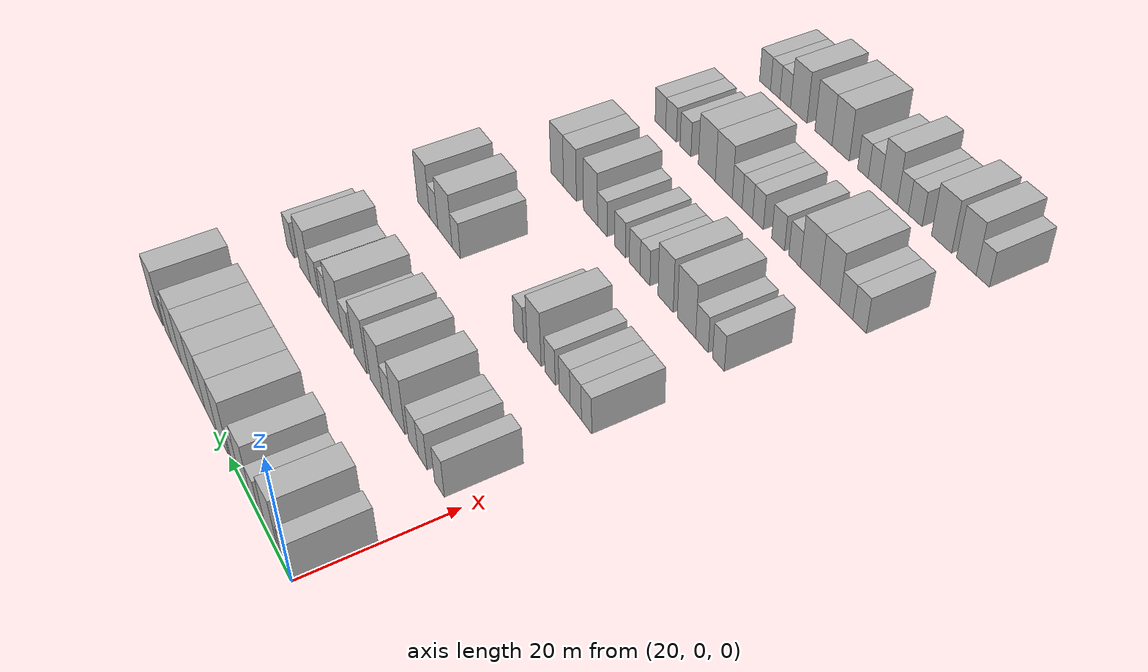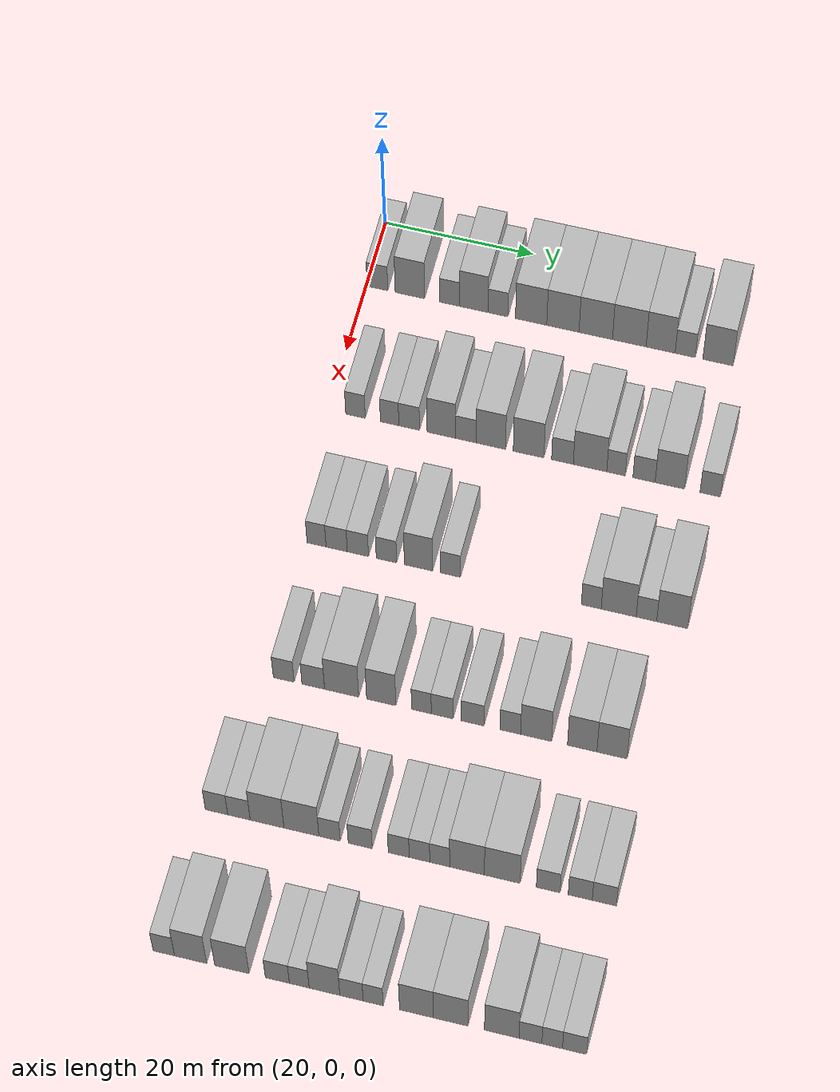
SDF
<sdf version="1.6">
 <world name="default">
  <model name="building_86">
   <static>1</static>
   <pose>25.0000 1.5672 0 0.000000 0.000000 0.000000</pose>
   <link name="link">
    <pose>0 0 3.00 0 0 0</pose>
    <collision name="collision"><geometry><box><size>10.0000 2.7812 6.0000</size></box></geometry></collision>
    <visual name="visual">
     <cast_shadows>0</cast_shadows>
     <geometry><box><size>10.0000 2.7812 6.0000</size></box></geometry>
     <material>
      <script>
       <uri>model://HANNAS_wall/materials/scripts</uri>
       <uri>model://HANNAS_wall/materials/textures</uri>
       <name>vrc/HANNAS_wall</name>
      </script>
     </material>
    </visual>
   </link>
  </model>
  <model name="building_87">
   <static>1</static>
   <pose>25.0000 5.9327 0 0.000000 0.000000 0.000000</pose>
   <link name="link">
    <pose>0 0 4.50 0 0 0</pose>
    <collision name="collision"><geometry><box><size>10.0000 3.9498 9.0000</size></box></geometry></collision>
    <visual name="visual">
     <cast_shadows>0</cast_shadows>
     <geometry><box><size>10.0000 3.9498 9.0000</size></box></geometry>
     <material>
      <script>
       <uri>model://HANNAS_wall/materials/scripts</uri>
       <uri>model://HANNAS_wall/materials/textures</uri>
       <name>vrc/HANNAS_wall</name>
      </script>
     </material>
    </visual>
   </link>
  </model>
  <model name="building_88">
   <static>1</static>
   <pose>25.0000 11.2726 0 0.000000 0.000000 0.000000</pose>
   <link name="link">
    <pose>0 0 3.00 0 0 0</pose>
    <collision name="collision"><geometry><box><size>10.0000 2.7298 6.0000</size></box></geometry></collision>
    <visual name="visual">
     <cast_shadows>0</cast_shadows>
     <geometry><box><size>10.0000 2.7298 6.0000</size></box></geometry>
     <material>
      <script>
       <uri>model://HANNAS_wall/materials/scripts</uri>
       <uri>model://HANNAS_wall/materials/textures</uri>
       <name>vrc/HANNAS_wall</name>
      </script>
     </material>
    </visual>
   </link>
  </model>
  <model name="building_89">
   <static>1</static>
   <pose>25.0000 14.5350 0 0.000000 0.000000 0.000000</pose>
   <link name="link">
    <pose>0 0 4.50 0 0 0</pose>
    <collision name="collision"><geometry><box><size>10.0000 3.7951 9.0000</size></box></geometry></collision>
    <visual name="visual">
     <cast_shadows>0</cast_shadows>
     <geometry><box><size>10.0000 3.7951 9.0000</size></box></geometry>
     <material>
      <script>
       <uri>model://HANNAS_wall/materials/scripts</uri>
       <uri>model://HANNAS_wall/materials/textures</uri>
       <name>vrc/HANNAS_wall</name>
      </script>
     </material>
    </visual>
   </link>
  </model>
  <model name="building_90">
   <static>1</static>
   <pose>25.0000 17.7570 0 0.000000 0.000000 0.000000</pose>
   <link name="link">
    <pose>0 0 3.00 0 0 0</pose>
    <collision name="collision"><geometry><box><size>10.0000 2.6489 6.0000</size></box></geometry></collision>
    <visual name="visual">
     <cast_shadows>0</cast_shadows>
     <geometry><box><size>10.0000 2.6489 6.0000</size></box></geometry>
     <material>
      <script>
       <uri>model://HANNAS_wall/materials/scripts</uri>
       <uri>model://HANNAS_wall/materials/textures</uri>
       <name>vrc/HANNAS_wall</name>
      </script>
     </material>
    </visual>
   </link>
  </model>
  <model name="building_91">
   <static>1</static>
   <pose>25.0000 22.1676 0 0.000000 0.000000 0.000000</pose>
   <link name="link">
    <pose>0 0 4.50 0 0 0</pose>
    <collision name="collision"><geometry><box><size>10.0000 4.1721 9.0000</size></box></geometry></collision>
    <visual name="visual">
     <cast_shadows>0</cast_shadows>
     <geometry><box><size>10.0000 4.1721 9.0000</size></box></geometry>
     <material>
      <script>
       <uri>model://HANNAS_wall/materials/scripts</uri>
       <uri>model://HANNAS_wall/materials/textures</uri>
       <name>vrc/HANNAS_wall</name>
      </script>
     </material>
    </visual>
   </link>
  </model>
  <model name="building_92">
   <static>1</static>
   <pose>25.0000 26.4035 0 0.000000 0.000000 0.000000</pose>
   <link name="link">
    <pose>0 0 4.50 0 0 0</pose>
    <collision name="collision"><geometry><box><size>10.0000 4.2997 9.0000</size></box></geometry></collision>
    <visual name="visual">
     <cast_shadows>0</cast_shadows>
     <geometry><box><size>10.0000 4.2997 9.0000</size></box></geometry>
     <material>
      <script>
       <uri>model://HANNAS_wall/materials/scripts</uri>
       <uri>model://HANNAS_wall/materials/textures</uri>
       <name>vrc/HANNAS_wall</name>
      </script>
     </material>
    </visual>
   </link>
  </model>
  <model name="building_93">
   <static>1</static>
   <pose>25.0000 30.7752 0 0.000000 0.000000 0.000000</pose>
   <link name="link">
    <pose>0 0 4.50 0 0 0</pose>
    <collision name="collision"><geometry><box><size>10.0000 4.4436 9.0000</size></box></geometry></collision>
    <visual name="visual">
     <cast_shadows>0</cast_shadows>
     <geometry><box><size>10.0000 4.4436 9.0000</size></box></geometry>
     <material>
      <script>
       <uri>model://HANNAS_wall/materials/scripts</uri>
       <uri>model://HANNAS_wall/materials/textures</uri>
       <name>vrc/HANNAS_wall</name>
      </script>
     </material>
    </visual>
   </link>
  </model>
  <model name="building_94">
   <static>1</static>
   <pose>25.0000 35.2268 0 0.000000 0.000000 0.000000</pose>
   <link name="link">
    <pose>0 0 4.50 0 0 0</pose>
    <collision name="collision"><geometry><box><size>10.0000 4.4597 9.0000</size></box></geometry></collision>
    <visual name="visual">
     <cast_shadows>0</cast_shadows>
     <geometry><box><size>10.0000 4.4597 9.0000</size></box></geometry>
     <material>
      <script>
       <uri>model://HANNAS_wall/materials/scripts</uri>
       <uri>model://HANNAS_wall/materials/textures</uri>
       <name>vrc/HANNAS_wall</name>
      </script>
     </material>
    </visual>
   </link>
  </model>
  <model name="building_95">
   <static>1</static>
   <pose>25.0000 39.3792 0 0.000000 0.000000 0.000000</pose>
   <link name="link">
    <pose>0 0 4.50 0 0 0</pose>
    <collision name="collision"><geometry><box><size>10.0000 3.8450 9.0000</size></box></geometry></collision>
    <visual name="visual">
     <cast_shadows>0</cast_shadows>
     <geometry><box><size>10.0000 3.8450 9.0000</size></box></geometry>
     <material>
      <script>
       <uri>model://HANNAS_wall/materials/scripts</uri>
       <uri>model://HANNAS_wall/materials/textures</uri>
       <name>vrc/HANNAS_wall</name>
      </script>
     </material>
    </visual>
   </link>
  </model>
  <model name="building_96">
   <static>1</static>
   <pose>25.0000 42.6335 0 0.000000 0.000000 0.000000</pose>
   <link name="link">
    <pose>0 0 3.00 0 0 0</pose>
    <collision name="collision"><geometry><box><size>10.0000 2.6636 6.0000</size></box></geometry></collision>
    <visual name="visual">
     <cast_shadows>0</cast_shadows>
     <geometry><box><size>10.0000 2.6636 6.0000</size></box></geometry>
     <material>
      <script>
       <uri>model://HANNAS_wall/materials/scripts</uri>
       <uri>model://HANNAS_wall/materials/textures</uri>
       <name>vrc/HANNAS_wall</name>
      </script>
     </material>
    </visual>
   </link>
  </model>
  <model name="building_97">
   <static>1</static>
   <pose>25.0000 46.9582 0 0.000000 0.000000 0.000000</pose>
   <link name="link">
    <pose>0 0 4.50 0 0 0</pose>
    <collision name="collision"><geometry><box><size>10.0000 3.9858 9.0000</size></box></geometry></collision>
    <visual name="visual">
     <cast_shadows>0</cast_shadows>
     <geometry><box><size>10.0000 3.9858 9.0000</size></box></geometry>
     <material>
      <script>
       <uri>model://HANNAS_wall/materials/scripts</uri>
       <uri>model://HANNAS_wall/materials/textures</uri>
       <name>vrc/HANNAS_wall</name>
      </script>
     </material>
    </visual>
   </link>
  </model>
  <model name="building_256">
   <static>1</static>
   <pose>44.0000 3.6545 0 0.000000 0.000000 0.000000</pose>
   <link name="link">
    <pose>0 0 3.00 0 0 0</pose>
    <collision name="collision"><geometry><box><size>10.0000 2.5869 6.0000</size></box></geometry></collision>
    <visual name="visual">
     <cast_shadows>0</cast_shadows>
     <geometry><box><size>10.0000 2.5869 6.0000</size></box></geometry>
     <material>
      <script>
       <uri>model://HANNAS_wall/materials/scripts</uri>
       <uri>model://HANNAS_wall/materials/textures</uri>
       <name>vrc/HANNAS_wall</name>
      </script>
     </material>
    </visual>
   </link>
  </model>
  <model name="building_257">
   <static>1</static>
   <pose>44.0000 8.1633 0 0.000000 0.000000 0.000000</pose>
   <link name="link">
    <pose>0 0 3.00 0 0 0</pose>
    <collision name="collision"><geometry><box><size>10.0000 2.4307 6.0000</size></box></geometry></collision>
    <visual name="visual">
     <cast_shadows>0</cast_shadows>
     <geometry><box><size>10.0000 2.4307 6.0000</size></box></geometry>
     <material>
      <script>
       <uri>model://HANNAS_wall/materials/scripts</uri>
       <uri>model://HANNAS_wall/materials/textures</uri>
       <name>vrc/HANNAS_wall</name>
      </script>
     </material>
    </visual>
   </link>
  </model>
  <model name="building_258">
   <static>1</static>
   <pose>44.0000 10.7474 0 0.000000 0.000000 0.000000</pose>
   <link name="link">
    <pose>0 0 3.00 0 0 0</pose>
    <collision name="collision"><geometry><box><size>10.0000 2.7377 6.0000</size></box></geometry></collision>
    <visual name="visual">
     <cast_shadows>0</cast_shadows>
     <geometry><box><size>10.0000 2.7377 6.0000</size></box></geometry>
     <material>
      <script>
       <uri>model://HANNAS_wall/materials/scripts</uri>
       <uri>model://HANNAS_wall/materials/textures</uri>
       <name>vrc/HANNAS_wall</name>
      </script>
     </material>
    </visual>
   </link>
  </model>
  <model name="building_259">
   <static>1</static>
   <pose>44.0000 14.9917 0 0.000000 0.000000 0.000000</pose>
   <link name="link">
    <pose>0 0 4.50 0 0 0</pose>
    <collision name="collision"><geometry><box><size>10.0000 3.7508 9.0000</size></box></geometry></collision>
    <visual name="visual">
     <cast_shadows>0</cast_shadows>
     <geometry><box><size>10.0000 3.7508 9.0000</size></box></geometry>
     <material>
      <script>
       <uri>model://HANNAS_wall/materials/scripts</uri>
       <uri>model://HANNAS_wall/materials/textures</uri>
       <name>vrc/HANNAS_wall</name>
      </script>
     </material>
    </visual>
   </link>
  </model>
  <model name="building_260">
   <static>1</static>
   <pose>44.0000 18.2155 0 0.000000 0.000000 0.000000</pose>
   <link name="link">
    <pose>0 0 3.00 0 0 0</pose>
    <collision name="collision"><geometry><box><size>10.0000 2.6967 6.0000</size></box></geometry></collision>
    <visual name="visual">
     <cast_shadows>0</cast_shadows>
     <geometry><box><size>10.0000 2.6967 6.0000</size></box></geometry>
     <material>
      <script>
       <uri>model://HANNAS_wall/materials/scripts</uri>
       <uri>model://HANNAS_wall/materials/textures</uri>
       <name>vrc/HANNAS_wall</name>
      </script>
     </material>
    </visual>
   </link>
  </model>
  <model name="building_261">
   <static>1</static>
   <pose>44.0000 21.4991 0 0.000000 0.000000 0.000000</pose>
   <link name="link">
    <pose>0 0 4.50 0 0 0</pose>
    <collision name="collision"><geometry><box><size>10.0000 3.8705 9.0000</size></box></geometry></collision>
    <visual name="visual">
     <cast_shadows>0</cast_shadows>
     <geometry><box><size>10.0000 3.8705 9.0000</size></box></geometry>
     <material>
      <script>
       <uri>model://HANNAS_wall/materials/scripts</uri>
       <uri>model://HANNAS_wall/materials/textures</uri>
       <name>vrc/HANNAS_wall</name>
      </script>
     </material>
    </visual>
   </link>
  </model>
  <model name="building_262">
   <static>1</static>
   <pose>44.0000 26.4454 0 0.000000 0.000000 0.000000</pose>
   <link name="link">
    <pose>0 0 4.50 0 0 0</pose>
    <collision name="collision"><geometry><box><size>10.0000 4.0221 9.0000</size></box></geometry></collision>
    <visual name="visual">
     <cast_shadows>0</cast_shadows>
     <geometry><box><size>10.0000 4.0221 9.0000</size></box></geometry>
     <material>
      <script>
       <uri>model://HANNAS_wall/materials/scripts</uri>
       <uri>model://HANNAS_wall/materials/textures</uri>
       <name>vrc/HANNAS_wall</name>
      </script>
     </material>
    </visual>
   </link>
  </model>
  <model name="building_263">
   <static>1</static>
   <pose>44.0000 30.8744 0 0.000000 0.000000 0.000000</pose>
   <link name="link">
    <pose>0 0 3.00 0 0 0</pose>
    <collision name="collision"><geometry><box><size>10.0000 2.8359 6.0000</size></box></geometry></collision>
    <visual name="visual">
     <cast_shadows>0</cast_shadows>
     <geometry><box><size>10.0000 2.8359 6.0000</size></box></geometry>
     <material>
      <script>
       <uri>model://HANNAS_wall/materials/scripts</uri>
       <uri>model://HANNAS_wall/materials/textures</uri>
       <name>vrc/HANNAS_wall</name>
      </script>
     </material>
    </visual>
   </link>
  </model>
  <model name="building_264">
   <static>1</static>
   <pose>44.0000 34.4779 0 0.000000 0.000000 0.000000</pose>
   <link name="link">
    <pose>0 0 4.50 0 0 0</pose>
    <collision name="collision"><geometry><box><size>10.0000 4.3710 9.0000</size></box></geometry></collision>
    <visual name="visual">
     <cast_shadows>0</cast_shadows>
     <geometry><box><size>10.0000 4.3710 9.0000</size></box></geometry>
     <material>
      <script>
       <uri>model://HANNAS_wall/materials/scripts</uri>
       <uri>model://HANNAS_wall/materials/textures</uri>
       <name>vrc/HANNAS_wall</name>
      </script>
     </material>
    </visual>
   </link>
  </model>
  <model name="building_265">
   <static>1</static>
   <pose>44.0000 37.8671 0 0.000000 0.000000 0.000000</pose>
   <link name="link">
    <pose>0 0 3.00 0 0 0</pose>
    <collision name="collision"><geometry><box><size>10.0000 2.4075 6.0000</size></box></geometry></collision>
    <visual name="visual">
     <cast_shadows>0</cast_shadows>
     <geometry><box><size>10.0000 2.4075 6.0000</size></box></geometry>
     <material>
      <script>
       <uri>model://HANNAS_wall/materials/scripts</uri>
       <uri>model://HANNAS_wall/materials/textures</uri>
       <name>vrc/HANNAS_wall</name>
      </script>
     </material>
    </visual>
   </link>
  </model>
  <model name="building_266">
   <static>1</static>
   <pose>44.0000 41.5137 0 0.000000 0.000000 0.000000</pose>
   <link name="link">
    <pose>0 0 3.00 0 0 0</pose>
    <collision name="collision"><geometry><box><size>10.0000 2.8856 6.0000</size></box></geometry></collision>
    <visual name="visual">
     <cast_shadows>0</cast_shadows>
     <geometry><box><size>10.0000 2.8856 6.0000</size></box></geometry>
     <material>
      <script>
       <uri>model://HANNAS_wall/materials/scripts</uri>
       <uri>model://HANNAS_wall/materials/textures</uri>
       <name>vrc/HANNAS_wall</name>
      </script>
     </material>
    </visual>
   </link>
  </model>
  <model name="building_267">
   <static>1</static>
   <pose>44.0000 44.8757 0 0.000000 0.000000 0.000000</pose>
   <link name="link">
    <pose>0 0 4.50 0 0 0</pose>
    <collision name="collision"><geometry><box><size>10.0000 3.8383 9.0000</size></box></geometry></collision>
    <visual name="visual">
     <cast_shadows>0</cast_shadows>
     <geometry><box><size>10.0000 3.8383 9.0000</size></box></geometry>
     <material>
      <script>
       <uri>model://HANNAS_wall/materials/scripts</uri>
       <uri>model://HANNAS_wall/materials/textures</uri>
       <name>vrc/HANNAS_wall</name>
      </script>
     </material>
    </visual>
   </link>
  </model>
  <model name="building_268">
   <static>1</static>
   <pose>44.0000 50.1174 0 0.000000 0.000000 0.000000</pose>
   <link name="link">
    <pose>0 0 3.00 0 0 0</pose>
    <collision name="collision"><geometry><box><size>10.0000 2.6453 6.0000</size></box></geometry></collision>
    <visual name="visual">
     <cast_shadows>0</cast_shadows>
     <geometry><box><size>10.0000 2.6453 6.0000</size></box></geometry>
     <material>
      <script>
       <uri>model://HANNAS_wall/materials/scripts</uri>
       <uri>model://HANNAS_wall/materials/textures</uri>
       <name>vrc/HANNAS_wall</name>
      </script>
     </material>
    </visual>
   </link>
  </model>
  <model name="building_426">
   <static>1</static>
   <pose>63.0000 3.6336 0 0.000000 0.000000 0.000000</pose>
   <link name="link">
    <pose>0 0 3.00 0 0 0</pose>
    <collision name="collision"><geometry><box><size>10.0000 2.4721 6.0000</size></box></geometry></collision>
    <visual name="visual">
     <cast_shadows>0</cast_shadows>
     <geometry><box><size>10.0000 2.4721 6.0000</size></box></geometry>
     <material>
      <script>
       <uri>model://HANNAS_wall/materials/scripts</uri>
       <uri>model://HANNAS_wall/materials/textures</uri>
       <name>vrc/HANNAS_wall</name>
      </script>
     </material>
    </visual>
   </link>
  </model>
  <model name="building_427">
   <static>1</static>
   <pose>63.0000 6.2484 0 0.000000 0.000000 0.000000</pose>
   <link name="link">
    <pose>0 0 3.00 0 0 0</pose>
    <collision name="collision"><geometry><box><size>10.0000 2.7575 6.0000</size></box></geometry></collision>
    <visual name="visual">
     <cast_shadows>0</cast_shadows>
     <geometry><box><size>10.0000 2.7575 6.0000</size></box></geometry>
     <material>
      <script>
       <uri>model://HANNAS_wall/materials/scripts</uri>
       <uri>model://HANNAS_wall/materials/textures</uri>
       <name>vrc/HANNAS_wall</name>
      </script>
     </material>
    </visual>
   </link>
  </model>
  <model name="building_428">
   <static>1</static>
   <pose>63.0000 9.0083 0 0.000000 0.000000 0.000000</pose>
   <link name="link">
    <pose>0 0 3.00 0 0 0</pose>
    <collision name="collision"><geometry><box><size>10.0000 2.7623 6.0000</size></box></geometry></collision>
    <visual name="visual">
     <cast_shadows>0</cast_shadows>
     <geometry><box><size>10.0000 2.7623 6.0000</size></box></geometry>
     <material>
      <script>
       <uri>model://HANNAS_wall/materials/scripts</uri>
       <uri>model://HANNAS_wall/materials/textures</uri>
       <name>vrc/HANNAS_wall</name>
      </script>
     </material>
    </visual>
   </link>
  </model>
  <model name="building_429">
   <static>1</static>
   <pose>63.0000 12.7132 0 0.000000 0.000000 0.000000</pose>
   <link name="link">
    <pose>0 0 3.00 0 0 0</pose>
    <collision name="collision"><geometry><box><size>10.0000 2.6476 6.0000</size></box></geometry></collision>
    <visual name="visual">
     <cast_shadows>0</cast_shadows>
     <geometry><box><size>10.0000 2.6476 6.0000</size></box></geometry>
     <material>
      <script>
       <uri>model://HANNAS_wall/materials/scripts</uri>
       <uri>model://HANNAS_wall/materials/textures</uri>
       <name>vrc/HANNAS_wall</name>
      </script>
     </material>
    </visual>
   </link>
  </model>
  <model name="building_430">
   <static>1</static>
   <pose>63.0000 16.8650 0 0.000000 0.000000 0.000000</pose>
   <link name="link">
    <pose>0 0 4.50 0 0 0</pose>
    <collision name="collision"><geometry><box><size>10.0000 3.6560 9.0000</size></box></geometry></collision>
    <visual name="visual">
     <cast_shadows>0</cast_shadows>
     <geometry><box><size>10.0000 3.6560 9.0000</size></box></geometry>
     <material>
      <script>
       <uri>model://HANNAS_wall/materials/scripts</uri>
       <uri>model://HANNAS_wall/materials/textures</uri>
       <name>vrc/HANNAS_wall</name>
      </script>
     </material>
    </visual>
   </link>
  </model>
  <model name="building_431">
   <static>1</static>
   <pose>63.0000 20.9972 0 0.000000 0.000000 0.000000</pose>
   <link name="link">
    <pose>0 0 3.00 0 0 0</pose>
    <collision name="collision"><geometry><box><size>10.0000 2.6084 6.0000</size></box></geometry></collision>
    <visual name="visual">
     <cast_shadows>0</cast_shadows>
     <geometry><box><size>10.0000 2.6084 6.0000</size></box></geometry>
     <material>
      <script>
       <uri>model://HANNAS_wall/materials/scripts</uri>
       <uri>model://HANNAS_wall/materials/textures</uri>
       <name>vrc/HANNAS_wall</name>
      </script>
     </material>
    </visual>
   </link>
  </model>
  <model name="building_432">
   <static>1</static>
   <pose>63.0000 39.1107 0 0.000000 0.000000 0.000000</pose>
   <link name="link">
    <pose>0 0 3.00 0 0 0</pose>
    <collision name="collision"><geometry><box><size>10.0000 2.5396 6.0000</size></box></geometry></collision>
    <visual name="visual">
     <cast_shadows>0</cast_shadows>
     <geometry><box><size>10.0000 2.5396 6.0000</size></box></geometry>
     <material>
      <script>
       <uri>model://HANNAS_wall/materials/scripts</uri>
       <uri>model://HANNAS_wall/materials/textures</uri>
       <name>vrc/HANNAS_wall</name>
      </script>
     </material>
    </visual>
   </link>
  </model>
  <model name="building_433">
   <static>1</static>
   <pose>63.0000 42.6189 0 0.000000 0.000000 0.000000</pose>
   <link name="link">
    <pose>0 0 4.50 0 0 0</pose>
    <collision name="collision"><geometry><box><size>10.0000 4.4769 9.0000</size></box></geometry></collision>
    <visual name="visual">
     <cast_shadows>0</cast_shadows>
     <geometry><box><size>10.0000 4.4769 9.0000</size></box></geometry>
     <material>
      <script>
       <uri>model://HANNAS_wall/materials/scripts</uri>
       <uri>model://HANNAS_wall/materials/textures</uri>
       <name>vrc/HANNAS_wall</name>
      </script>
     </material>
    </visual>
   </link>
  </model>
  <model name="building_434">
   <static>1</static>
   <pose>63.0000 46.1632 0 0.000000 0.000000 0.000000</pose>
   <link name="link">
    <pose>0 0 3.00 0 0 0</pose>
    <collision name="collision"><geometry><box><size>10.0000 2.6117 6.0000</size></box></geometry></collision>
    <visual name="visual">
     <cast_shadows>0</cast_shadows>
     <geometry><box><size>10.0000 2.6117 6.0000</size></box></geometry>
     <material>
      <script>
       <uri>model://HANNAS_wall/materials/scripts</uri>
       <uri>model://HANNAS_wall/materials/textures</uri>
       <name>vrc/HANNAS_wall</name>
      </script>
     </material>
    </visual>
   </link>
  </model>
  <model name="building_435">
   <static>1</static>
   <pose>63.0000 49.4513 0 0.000000 0.000000 0.000000</pose>
   <link name="link">
    <pose>0 0 4.50 0 0 0</pose>
    <collision name="collision"><geometry><box><size>10.0000 3.9644 9.0000</size></box></geometry></collision>
    <visual name="visual">
     <cast_shadows>0</cast_shadows>
     <geometry><box><size>10.0000 3.9644 9.0000</size></box></geometry>
     <material>
      <script>
       <uri>model://HANNAS_wall/materials/scripts</uri>
       <uri>model://HANNAS_wall/materials/textures</uri>
       <name>vrc/HANNAS_wall</name>
      </script>
     </material>
    </visual>
   </link>
  </model>
  <model name="building_594">
   <static>1</static>
   <pose>82.0000 4.5657 0 0.000000 0.000000 0.000000</pose>
   <link name="link">
    <pose>0 0 3.00 0 0 0</pose>
    <collision name="collision"><geometry><box><size>10.0000 2.6649 6.0000</size></box></geometry></collision>
    <visual name="visual">
     <cast_shadows>0</cast_shadows>
     <geometry><box><size>10.0000 2.6649 6.0000</size></box></geometry>
     <material>
      <script>
       <uri>model://HANNAS_wall/materials/scripts</uri>
       <uri>model://HANNAS_wall/materials/textures</uri>
       <name>vrc/HANNAS_wall</name>
      </script>
     </material>
    </visual>
   </link>
  </model>
  <model name="building_595">
   <static>1</static>
   <pose>82.0000 8.3447 0 0.000000 0.000000 0.000000</pose>
   <link name="link">
    <pose>0 0 3.00 0 0 0</pose>
    <collision name="collision"><geometry><box><size>10.0000 2.8932 6.0000</size></box></geometry></collision>
    <visual name="visual">
     <cast_shadows>0</cast_shadows>
     <geometry><box><size>10.0000 2.8932 6.0000</size></box></geometry>
     <material>
      <script>
       <uri>model://HANNAS_wall/materials/scripts</uri>
       <uri>model://HANNAS_wall/materials/textures</uri>
       <name>vrc/HANNAS_wall</name>
      </script>
     </material>
    </visual>
   </link>
  </model>
  <model name="building_596">
   <static>1</static>
   <pose>82.0000 11.9705 0 0.000000 0.000000 0.000000</pose>
   <link name="link">
    <pose>0 0 4.50 0 0 0</pose>
    <collision name="collision"><geometry><box><size>10.0000 4.3583 9.0000</size></box></geometry></collision>
    <visual name="visual">
     <cast_shadows>0</cast_shadows>
     <geometry><box><size>10.0000 4.3583 9.0000</size></box></geometry>
     <material>
      <script>
       <uri>model://HANNAS_wall/materials/scripts</uri>
       <uri>model://HANNAS_wall/materials/textures</uri>
       <name>vrc/HANNAS_wall</name>
      </script>
     </material>
    </visual>
   </link>
  </model>
  <model name="building_597">
   <static>1</static>
   <pose>82.0000 17.0150 0 0.000000 0.000000 0.000000</pose>
   <link name="link">
    <pose>0 0 4.50 0 0 0</pose>
    <collision name="collision"><geometry><box><size>10.0000 3.7307 9.0000</size></box></geometry></collision>
    <visual name="visual">
     <cast_shadows>0</cast_shadows>
     <geometry><box><size>10.0000 3.7307 9.0000</size></box></geometry>
     <material>
      <script>
       <uri>model://HANNAS_wall/materials/scripts</uri>
       <uri>model://HANNAS_wall/materials/textures</uri>
       <name>vrc/HANNAS_wall</name>
      </script>
     </material>
    </visual>
   </link>
  </model>
  <model name="building_598">
   <static>1</static>
   <pose>82.0000 22.1300 0 0.000000 0.000000 0.000000</pose>
   <link name="link">
    <pose>0 0 3.00 0 0 0</pose>
    <collision name="collision"><geometry><box><size>10.0000 2.4995 6.0000</size></box></geometry></collision>
    <visual name="visual">
     <cast_shadows>0</cast_shadows>
     <geometry><box><size>10.0000 2.4995 6.0000</size></box></geometry>
     <material>
      <script>
       <uri>model://HANNAS_wall/materials/scripts</uri>
       <uri>model://HANNAS_wall/materials/textures</uri>
       <name>vrc/HANNAS_wall</name>
      </script>
     </material>
    </visual>
   </link>
  </model>
  <model name="building_599">
   <static>1</static>
   <pose>82.0000 24.7672 0 0.000000 0.000000 0.000000</pose>
   <link name="link">
    <pose>0 0 3.00 0 0 0</pose>
    <collision name="collision"><geometry><box><size>10.0000 2.7748 6.0000</size></box></geometry></collision>
    <visual name="visual">
     <cast_shadows>0</cast_shadows>
     <geometry><box><size>10.0000 2.7748 6.0000</size></box></geometry>
     <material>
      <script>
       <uri>model://HANNAS_wall/materials/scripts</uri>
       <uri>model://HANNAS_wall/materials/textures</uri>
       <name>vrc/HANNAS_wall</name>
      </script>
     </material>
    </visual>
   </link>
  </model>
  <model name="building_600">
   <static>1</static>
   <pose>82.0000 28.6120 0 0.000000 0.000000 0.000000</pose>
   <link name="link">
    <pose>0 0 3.00 0 0 0</pose>
    <collision name="collision"><geometry><box><size>10.0000 2.9149 6.0000</size></box></geometry></collision>
    <visual name="visual">
     <cast_shadows>0</cast_shadows>
     <geometry><box><size>10.0000 2.9149 6.0000</size></box></geometry>
     <material>
      <script>
       <uri>model://HANNAS_wall/materials/scripts</uri>
       <uri>model://HANNAS_wall/materials/textures</uri>
       <name>vrc/HANNAS_wall</name>
      </script>
     </material>
    </visual>
   </link>
  </model>
  <model name="building_601">
   <static>1</static>
   <pose>82.0000 33.3764 0 0.000000 0.000000 0.000000</pose>
   <link name="link">
    <pose>0 0 3.00 0 0 0</pose>
    <collision name="collision"><geometry><box><size>10.0000 2.6138 6.0000</size></box></geometry></collision>
    <visual name="visual">
     <cast_shadows>0</cast_shadows>
     <geometry><box><size>10.0000 2.6138 6.0000</size></box></geometry>
     <material>
      <script>
       <uri>model://HANNAS_wall/materials/scripts</uri>
       <uri>model://HANNAS_wall/materials/textures</uri>
       <name>vrc/HANNAS_wall</name>
      </script>
     </material>
    </visual>
   </link>
  </model>
  <model name="building_602">
   <static>1</static>
   <pose>82.0000 36.6347 0 0.000000 0.000000 0.000000</pose>
   <link name="link">
    <pose>0 0 4.50 0 0 0</pose>
    <collision name="collision"><geometry><box><size>10.0000 3.9027 9.0000</size></box></geometry></collision>
    <visual name="visual">
     <cast_shadows>0</cast_shadows>
     <geometry><box><size>10.0000 3.9027 9.0000</size></box></geometry>
     <material>
      <script>
       <uri>model://HANNAS_wall/materials/scripts</uri>
       <uri>model://HANNAS_wall/materials/textures</uri>
       <name>vrc/HANNAS_wall</name>
      </script>
     </material>
    </visual>
   </link>
  </model>
  <model name="building_603">
   <static>1</static>
   <pose>82.0000 42.4357 0 0.000000 0.000000 0.000000</pose>
   <link name="link">
    <pose>0 0 4.50 0 0 0</pose>
    <collision name="collision"><geometry><box><size>10.0000 3.6992 9.0000</size></box></geometry></collision>
    <visual name="visual">
     <cast_shadows>0</cast_shadows>
     <geometry><box><size>10.0000 3.6992 9.0000</size></box></geometry>
     <material>
      <script>
       <uri>model://HANNAS_wall/materials/scripts</uri>
       <uri>model://HANNAS_wall/materials/textures</uri>
       <name>vrc/HANNAS_wall</name>
      </script>
     </material>
    </visual>
   </link>
  </model>
  <model name="building_604">
   <static>1</static>
   <pose>82.0000 46.1759 0 0.000000 0.000000 0.000000</pose>
   <link name="link">
    <pose>0 0 4.50 0 0 0</pose>
    <collision name="collision"><geometry><box><size>10.0000 3.7812 9.0000</size></box></geometry></collision>
    <visual name="visual">
     <cast_shadows>0</cast_shadows>
     <geometry><box><size>10.0000 3.7812 9.0000</size></box></geometry>
     <material>
      <script>
       <uri>model://HANNAS_wall/materials/scripts</uri>
       <uri>model://HANNAS_wall/materials/textures</uri>
       <name>vrc/HANNAS_wall</name>
      </script>
     </material>
    </visual>
   </link>
  </model>
  <model name="building_766">
   <static>1</static>
   <pose>101.0000 1.3192 0 0.000000 0.000000 0.000000</pose>
   <link name="link">
    <pose>0 0 3.00 0 0 0</pose>
    <collision name="collision"><geometry><box><size>10.0000 2.8205 6.0000</size></box></geometry></collision>
    <visual name="visual">
     <cast_shadows>0</cast_shadows>
     <geometry><box><size>10.0000 2.8205 6.0000</size></box></geometry>
     <material>
      <script>
       <uri>model://HANNAS_wall/materials/scripts</uri>
       <uri>model://HANNAS_wall/materials/textures</uri>
       <name>vrc/HANNAS_wall</name>
      </script>
     </material>
    </visual>
   </link>
  </model>
  <model name="building_767">
   <static>1</static>
   <pose>101.0000 4.1517 0 0.000000 0.000000 0.000000</pose>
   <link name="link">
    <pose>0 0 3.00 0 0 0</pose>
    <collision name="collision"><geometry><box><size>10.0000 2.8446 6.0000</size></box></geometry></collision>
    <visual name="visual">
     <cast_shadows>0</cast_shadows>
     <geometry><box><size>10.0000 2.8446 6.0000</size></box></geometry>
     <material>
      <script>
       <uri>model://HANNAS_wall/materials/scripts</uri>
       <uri>model://HANNAS_wall/materials/textures</uri>
       <name>vrc/HANNAS_wall</name>
      </script>
     </material>
    </visual>
   </link>
  </model>
  <model name="building_768">
   <static>1</static>
   <pose>101.0000 7.6965 0 0.000000 0.000000 0.000000</pose>
   <link name="link">
    <pose>0 0 4.50 0 0 0</pose>
    <collision name="collision"><geometry><box><size>10.0000 4.2450 9.0000</size></box></geometry></collision>
    <visual name="visual">
     <cast_shadows>0</cast_shadows>
     <geometry><box><size>10.0000 4.2450 9.0000</size></box></geometry>
     <material>
      <script>
       <uri>model://HANNAS_wall/materials/scripts</uri>
       <uri>model://HANNAS_wall/materials/textures</uri>
       <name>vrc/HANNAS_wall</name>
      </script>
     </material>
    </visual>
   </link>
  </model>
  <model name="building_769">
   <static>1</static>
   <pose>101.0000 12.0093 0 0.000000 0.000000 0.000000</pose>
   <link name="link">
    <pose>0 0 4.50 0 0 0</pose>
    <collision name="collision"><geometry><box><size>10.0000 4.3805 9.0000</size></box></geometry></collision>
    <visual name="visual">
     <cast_shadows>0</cast_shadows>
     <geometry><box><size>10.0000 4.3805 9.0000</size></box></geometry>
     <material>
      <script>
       <uri>model://HANNAS_wall/materials/scripts</uri>
       <uri>model://HANNAS_wall/materials/textures</uri>
       <name>vrc/HANNAS_wall</name>
      </script>
     </material>
    </visual>
   </link>
  </model>
  <model name="building_770">
   <static>1</static>
   <pose>101.0000 15.5371 0 0.000000 0.000000 0.000000</pose>
   <link name="link">
    <pose>0 0 3.00 0 0 0</pose>
    <collision name="collision"><geometry><box><size>10.0000 2.6751 6.0000</size></box></geometry></collision>
    <visual name="visual">
     <cast_shadows>0</cast_shadows>
     <geometry><box><size>10.0000 2.6751 6.0000</size></box></geometry>
     <material>
      <script>
       <uri>model://HANNAS_wall/materials/scripts</uri>
       <uri>model://HANNAS_wall/materials/textures</uri>
       <name>vrc/HANNAS_wall</name>
      </script>
     </material>
    </visual>
   </link>
  </model>
  <model name="building_771">
   <static>1</static>
   <pose>101.0000 19.3738 0 0.000000 0.000000 0.000000</pose>
   <link name="link">
    <pose>0 0 3.00 0 0 0</pose>
    <collision name="collision"><geometry><box><size>10.0000 2.9983 6.0000</size></box></geometry></collision>
    <visual name="visual">
     <cast_shadows>0</cast_shadows>
     <geometry><box><size>10.0000 2.9983 6.0000</size></box></geometry>
     <material>
      <script>
       <uri>model://HANNAS_wall/materials/scripts</uri>
       <uri>model://HANNAS_wall/materials/textures</uri>
       <name>vrc/HANNAS_wall</name>
      </script>
     </material>
    </visual>
   </link>
  </model>
  <model name="building_772">
   <static>1</static>
   <pose>101.0000 24.1780 0 0.000000 0.000000 0.000000</pose>
   <link name="link">
    <pose>0 0 3.00 0 0 0</pose>
    <collision name="collision"><geometry><box><size>10.0000 2.6101 6.0000</size></box></geometry></collision>
    <visual name="visual">
     <cast_shadows>0</cast_shadows>
     <geometry><box><size>10.0000 2.6101 6.0000</size></box></geometry>
     <material>
      <script>
       <uri>model://HANNAS_wall/materials/scripts</uri>
       <uri>model://HANNAS_wall/materials/textures</uri>
       <name>vrc/HANNAS_wall</name>
      </script>
     </material>
    </visual>
   </link>
  </model>
  <model name="building_773">
   <static>1</static>
   <pose>101.0000 26.7623 0 0.000000 0.000000 0.000000</pose>
   <link name="link">
    <pose>0 0 3.00 0 0 0</pose>
    <collision name="collision"><geometry><box><size>10.0000 2.5585 6.0000</size></box></geometry></collision>
    <visual name="visual">
     <cast_shadows>0</cast_shadows>
     <geometry><box><size>10.0000 2.5585 6.0000</size></box></geometry>
     <material>
      <script>
       <uri>model://HANNAS_wall/materials/scripts</uri>
       <uri>model://HANNAS_wall/materials/textures</uri>
       <name>vrc/HANNAS_wall</name>
      </script>
     </material>
    </visual>
   </link>
  </model>
  <model name="building_774">
   <static>1</static>
   <pose>101.0000 29.2777 0 0.000000 0.000000 0.000000</pose>
   <link name="link">
    <pose>0 0 3.00 0 0 0</pose>
    <collision name="collision"><geometry><box><size>10.0000 2.4724 6.0000</size></box></geometry></collision>
    <visual name="visual">
     <cast_shadows>0</cast_shadows>
     <geometry><box><size>10.0000 2.4724 6.0000</size></box></geometry>
     <material>
      <script>
       <uri>model://HANNAS_wall/materials/scripts</uri>
       <uri>model://HANNAS_wall/materials/textures</uri>
       <name>vrc/HANNAS_wall</name>
      </script>
     </material>
    </visual>
   </link>
  </model>
  <model name="building_775">
   <static>1</static>
   <pose>101.0000 32.6707 0 0.000000 0.000000 0.000000</pose>
   <link name="link">
    <pose>0 0 4.50 0 0 0</pose>
    <collision name="collision"><geometry><box><size>10.0000 4.3137 9.0000</size></box></geometry></collision>
    <visual name="visual">
     <cast_shadows>0</cast_shadows>
     <geometry><box><size>10.0000 4.3137 9.0000</size></box></geometry>
     <material>
      <script>
       <uri>model://HANNAS_wall/materials/scripts</uri>
       <uri>model://HANNAS_wall/materials/textures</uri>
       <name>vrc/HANNAS_wall</name>
      </script>
     </material>
    </visual>
   </link>
  </model>
  <model name="building_776">
   <static>1</static>
   <pose>101.0000 37.0450 0 0.000000 0.000000 0.000000</pose>
   <link name="link">
    <pose>0 0 4.50 0 0 0</pose>
    <collision name="collision"><geometry><box><size>10.0000 4.4349 9.0000</size></box></geometry></collision>
    <visual name="visual">
     <cast_shadows>0</cast_shadows>
     <geometry><box><size>10.0000 4.4349 9.0000</size></box></geometry>
     <material>
      <script>
       <uri>model://HANNAS_wall/materials/scripts</uri>
       <uri>model://HANNAS_wall/materials/textures</uri>
       <name>vrc/HANNAS_wall</name>
      </script>
     </material>
    </visual>
   </link>
  </model>
  <model name="building_777">
   <static>1</static>
   <pose>101.0000 42.7292 0 0.000000 0.000000 0.000000</pose>
   <link name="link">
    <pose>0 0 3.00 0 0 0</pose>
    <collision name="collision"><geometry><box><size>10.0000 2.9335 6.0000</size></box></geometry></collision>
    <visual name="visual">
     <cast_shadows>0</cast_shadows>
     <geometry><box><size>10.0000 2.9335 6.0000</size></box></geometry>
     <material>
      <script>
       <uri>model://HANNAS_wall/materials/scripts</uri>
       <uri>model://HANNAS_wall/materials/textures</uri>
       <name>vrc/HANNAS_wall</name>
      </script>
     </material>
    </visual>
   </link>
  </model>
  <model name="building_778">
   <static>1</static>
   <pose>101.0000 46.6781 0 0.000000 0.000000 0.000000</pose>
   <link name="link">
    <pose>0 0 3.00 0 0 0</pose>
    <collision name="collision"><geometry><box><size>10.0000 2.9643 6.0000</size></box></geometry></collision>
    <visual name="visual">
     <cast_shadows>0</cast_shadows>
     <geometry><box><size>10.0000 2.9643 6.0000</size></box></geometry>
     <material>
      <script>
       <uri>model://HANNAS_wall/materials/scripts</uri>
       <uri>model://HANNAS_wall/materials/textures</uri>
       <name>vrc/HANNAS_wall</name>
      </script>
     </material>
    </visual>
   </link>
  </model>
  <model name="building_779">
   <static>1</static>
   <pose>101.0000 49.6488 0 0.000000 0.000000 0.000000</pose>
   <link name="link">
    <pose>0 0 3.00 0 0 0</pose>
    <collision name="collision"><geometry><box><size>10.0000 2.9771 6.0000</size></box></geometry></collision>
    <visual name="visual">
     <cast_shadows>0</cast_shadows>
     <geometry><box><size>10.0000 2.9771 6.0000</size></box></geometry>
     <material>
      <script>
       <uri>model://HANNAS_wall/materials/scripts</uri>
       <uri>model://HANNAS_wall/materials/textures</uri>
       <name>vrc/HANNAS_wall</name>
      </script>
     </material>
    </visual>
   </link>
  </model>
  <model name="building_943">
   <static>1</static>
   <pose>120.0000 0.2008 0 0.000000 0.000000 0.000000</pose>
   <link name="link">
    <pose>0 0 3.00 0 0 0</pose>
    <collision name="collision"><geometry><box><size>10.0000 2.6541 6.0000</size></box></geometry></collision>
    <visual name="visual">
     <cast_shadows>0</cast_shadows>
     <geometry><box><size>10.0000 2.6541 6.0000</size></box></geometry>
     <material>
      <script>
       <uri>model://HANNAS_wall/materials/scripts</uri>
       <uri>model://HANNAS_wall/materials/textures</uri>
       <name>vrc/HANNAS_wall</name>
      </script>
     </material>
    </visual>
   </link>
  </model>
  <model name="building_944">
   <static>1</static>
   <pose>120.0000 3.5145 0 0.000000 0.000000 0.000000</pose>
   <link name="link">
    <pose>0 0 4.50 0 0 0</pose>
    <collision name="collision"><geometry><box><size>10.0000 3.9733 9.0000</size></box></geometry></collision>
    <visual name="visual">
     <cast_shadows>0</cast_shadows>
     <geometry><box><size>10.0000 3.9733 9.0000</size></box></geometry>
     <material>
      <script>
       <uri>model://HANNAS_wall/materials/scripts</uri>
       <uri>model://HANNAS_wall/materials/textures</uri>
       <name>vrc/HANNAS_wall</name>
      </script>
     </material>
    </visual>
   </link>
  </model>
  <model name="building_945">
   <static>1</static>
   <pose>120.0000 8.6205 0 0.000000 0.000000 0.000000</pose>
   <link name="link">
    <pose>0 0 4.50 0 0 0</pose>
    <collision name="collision"><geometry><box><size>10.0000 4.2387 9.0000</size></box></geometry></collision>
    <visual name="visual">
     <cast_shadows>0</cast_shadows>
     <geometry><box><size>10.0000 4.2387 9.0000</size></box></geometry>
     <material>
      <script>
       <uri>model://HANNAS_wall/materials/scripts</uri>
       <uri>model://HANNAS_wall/materials/textures</uri>
       <name>vrc/HANNAS_wall</name>
      </script>
     </material>
    </visual>
   </link>
  </model>
  <model name="building_946">
   <static>1</static>
   <pose>120.0000 14.2238 0 0.000000 0.000000 0.000000</pose>
   <link name="link">
    <pose>0 0 3.00 0 0 0</pose>
    <collision name="collision"><geometry><box><size>10.0000 2.9678 6.0000</size></box></geometry></collision>
    <visual name="visual">
     <cast_shadows>0</cast_shadows>
     <geometry><box><size>10.0000 2.9678 6.0000</size></box></geometry>
     <material>
      <script>
       <uri>model://HANNAS_wall/materials/scripts</uri>
       <uri>model://HANNAS_wall/materials/textures</uri>
       <name>vrc/HANNAS_wall</name>
      </script>
     </material>
    </visual>
   </link>
  </model>
  <model name="building_947">
   <static>1</static>
   <pose>120.0000 16.9225 0 0.000000 0.000000 0.000000</pose>
   <link name="link">
    <pose>0 0 3.00 0 0 0</pose>
    <collision name="collision"><geometry><box><size>10.0000 2.4295 6.0000</size></box></geometry></collision>
    <visual name="visual">
     <cast_shadows>0</cast_shadows>
     <geometry><box><size>10.0000 2.4295 6.0000</size></box></geometry>
     <material>
      <script>
       <uri>model://HANNAS_wall/materials/scripts</uri>
       <uri>model://HANNAS_wall/materials/textures</uri>
       <name>vrc/HANNAS_wall</name>
      </script>
     </material>
    </visual>
   </link>
  </model>
  <model name="building_948">
   <static>1</static>
   <pose>120.0000 20.0161 0 0.000000 0.000000 0.000000</pose>
   <link name="link">
    <pose>0 0 4.50 0 0 0</pose>
    <collision name="collision"><geometry><box><size>10.0000 3.7576 9.0000</size></box></geometry></collision>
    <visual name="visual">
     <cast_shadows>0</cast_shadows>
     <geometry><box><size>10.0000 3.7576 9.0000</size></box></geometry>
     <material>
      <script>
       <uri>model://HANNAS_wall/materials/scripts</uri>
       <uri>model://HANNAS_wall/materials/textures</uri>
       <name>vrc/HANNAS_wall</name>
      </script>
     </material>
    </visual>
   </link>
  </model>
  <model name="building_949">
   <static>1</static>
   <pose>120.0000 23.3317 0 0.000000 0.000000 0.000000</pose>
   <link name="link">
    <pose>0 0 3.00 0 0 0</pose>
    <collision name="collision"><geometry><box><size>10.0000 2.8737 6.0000</size></box></geometry></collision>
    <visual name="visual">
     <cast_shadows>0</cast_shadows>
     <geometry><box><size>10.0000 2.8737 6.0000</size></box></geometry>
     <material>
      <script>
       <uri>model://HANNAS_wall/materials/scripts</uri>
       <uri>model://HANNAS_wall/materials/textures</uri>
       <name>vrc/HANNAS_wall</name>
      </script>
     </material>
    </visual>
   </link>
  </model>
  <model name="building_950">
   <static>1</static>
   <pose>120.0000 25.9902 0 0.000000 0.000000 0.000000</pose>
   <link name="link">
    <pose>0 0 3.00 0 0 0</pose>
    <collision name="collision"><geometry><box><size>10.0000 2.4431 6.0000</size></box></geometry></collision>
    <visual name="visual">
     <cast_shadows>0</cast_shadows>
     <geometry><box><size>10.0000 2.4431 6.0000</size></box></geometry>
     <material>
      <script>
       <uri>model://HANNAS_wall/materials/scripts</uri>
       <uri>model://HANNAS_wall/materials/textures</uri>
       <name>vrc/HANNAS_wall</name>
      </script>
     </material>
    </visual>
   </link>
  </model>
  <model name="building_951">
   <static>1</static>
   <pose>120.0000 31.2804 0 0.000000 0.000000 0.000000</pose>
   <link name="link">
    <pose>0 0 4.50 0 0 0</pose>
    <collision name="collision"><geometry><box><size>10.0000 4.1374 9.0000</size></box></geometry></collision>
    <visual name="visual">
     <cast_shadows>0</cast_shadows>
     <geometry><box><size>10.0000 4.1374 9.0000</size></box></geometry>
     <material>
      <script>
       <uri>model://HANNAS_wall/materials/scripts</uri>
       <uri>model://HANNAS_wall/materials/textures</uri>
       <name>vrc/HANNAS_wall</name>
      </script>
     </material>
    </visual>
   </link>
  </model>
  <model name="building_952">
   <static>1</static>
   <pose>120.0000 35.4582 0 0.000000 0.000000 0.000000</pose>
   <link name="link">
    <pose>0 0 4.50 0 0 0</pose>
    <collision name="collision"><geometry><box><size>10.0000 4.2182 9.0000</size></box></geometry></collision>
    <visual name="visual">
     <cast_shadows>0</cast_shadows>
     <geometry><box><size>10.0000 4.2182 9.0000</size></box></geometry>
     <material>
      <script>
       <uri>model://HANNAS_wall/materials/scripts</uri>
       <uri>model://HANNAS_wall/materials/textures</uri>
       <name>vrc/HANNAS_wall</name>
      </script>
     </material>
    </visual>
   </link>
  </model>
  <model name="building_953">
   <static>1</static>
   <pose>120.0000 41.6665 0 0.000000 0.000000 0.000000</pose>
   <link name="link">
    <pose>0 0 4.50 0 0 0</pose>
    <collision name="collision"><geometry><box><size>10.0000 4.1983 9.0000</size></box></geometry></collision>
    <visual name="visual">
     <cast_shadows>0</cast_shadows>
     <geometry><box><size>10.0000 4.1983 9.0000</size></box></geometry>
     <material>
      <script>
       <uri>model://HANNAS_wall/materials/scripts</uri>
       <uri>model://HANNAS_wall/materials/textures</uri>
       <name>vrc/HANNAS_wall</name>
      </script>
     </material>
    </visual>
   </link>
  </model>
  <model name="building_954">
   <static>1</static>
   <pose>120.0000 45.1428 0 0.000000 0.000000 0.000000</pose>
   <link name="link">
    <pose>0 0 3.00 0 0 0</pose>
    <collision name="collision"><geometry><box><size>10.0000 2.7542 6.0000</size></box></geometry></collision>
    <visual name="visual">
     <cast_shadows>0</cast_shadows>
     <geometry><box><size>10.0000 2.7542 6.0000</size></box></geometry>
     <material>
      <script>
       <uri>model://HANNAS_wall/materials/scripts</uri>
       <uri>model://HANNAS_wall/materials/textures</uri>
       <name>vrc/HANNAS_wall</name>
      </script>
     </material>
    </visual>
   </link>
  </model>
  <model name="building_955">
   <static>1</static>
   <pose>120.0000 47.7705 0 0.000000 0.000000 0.000000</pose>
   <link name="link">
    <pose>0 0 3.00 0 0 0</pose>
    <collision name="collision"><geometry><box><size>10.0000 2.5013 6.0000</size></box></geometry></collision>
    <visual name="visual">
     <cast_shadows>0</cast_shadows>
     <geometry><box><size>10.0000 2.5013 6.0000</size></box></geometry>
     <material>
      <script>
       <uri>model://HANNAS_wall/materials/scripts</uri>
       <uri>model://HANNAS_wall/materials/textures</uri>
       <name>vrc/HANNAS_wall</name>
      </script>
     </material>
    </visual>
   </link>
  </model>
  <model name="building_956">
   <static>1</static>
   <pose>120.0000 50.4809 0 0.000000 0.000000 0.000000</pose>
   <link name="link">
    <pose>0 0 3.00 0 0 0</pose>
    <collision name="collision"><geometry><box><size>10.0000 2.9195 6.0000</size></box></geometry></collision>
    <visual name="visual">
     <cast_shadows>0</cast_shadows>
     <geometry><box><size>10.0000 2.9195 6.0000</size></box></geometry>
     <material>
      <script>
       <uri>model://HANNAS_wall/materials/scripts</uri>
       <uri>model://HANNAS_wall/materials/textures</uri>
       <name>vrc/HANNAS_wall</name>
      </script>
     </material>
    </visual>
   </link>
  </model>
 </world>
</sdf>
